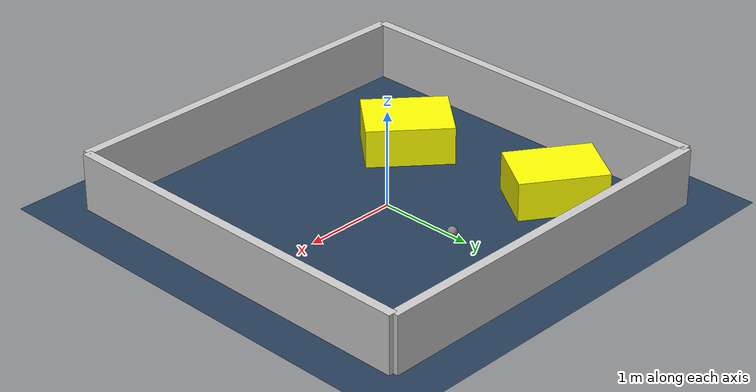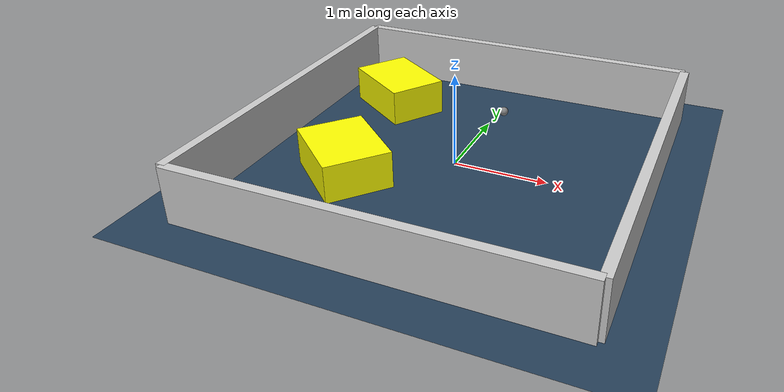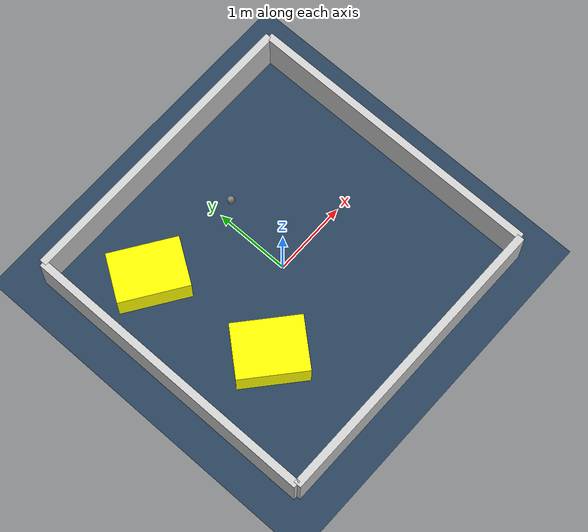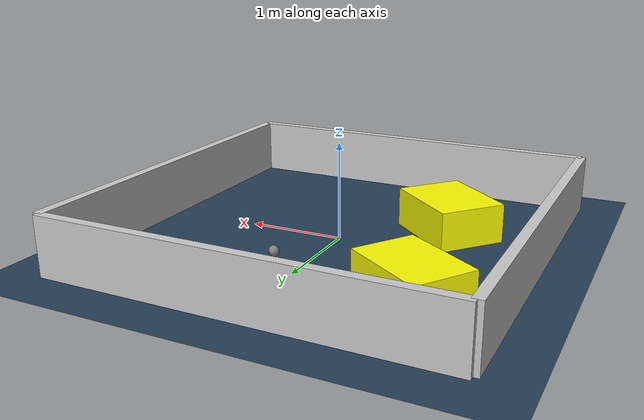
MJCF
<?xml version="1.0" ?>
<mujoco model="generated_environment">
  <option timestep="0.01" integrator="RK4" cone="elliptic"/>
  <default>
    <geom density="1"/>
  </default>
  <asset>
    <texture builtin="gradient" height="3072" rgb1="0.3 0.5 0.7" rgb2="0 0 0" type="skybox" width="512"/>
    <texture builtin="checker" height="300" mark="edge" markrgb="0.8 0.8 0.8" name="groundplane" rgb1="0.2 0.3 0.4" rgb2="0.1 0.2 0.3" type="2d" width="300"/>
    <material name="groundplane" reflectance="0.2" texrepeat="5 5" texture="groundplane" texuniform="true"/>
    <material name="robot" rgba="0.0 1.0 0.0 1"/>
  </asset>
  <worldbody>
    <light dir="0 0 -1" directional="true" pos="0 0 1.5"/>
    <geom condim="4" friction="1.0 0.005 0.001" material="groundplane" name="floor" size="0 0 0.05" type="plane"/>
    <body name="walls">
      <geom name="wall_1" condim="4" pos="-2.0 0.0 0.3" rgba="0.800000011920929 0.800000011920929 0.800000011920929 1.0" size="0.05 2.0 0.3" type="box"/>
      <geom name="wall_2" condim="4" pos="2.0 0.0 0.3" rgba="0.800000011920929 0.800000011920929 0.800000011920929 1.0" size="0.05 2.0 0.3" type="box"/>
      <geom name="wall_3" condim="4" pos="0.0 -2.0 0.3" rgba="0.800000011920929 0.800000011920929 0.800000011920929 1.0" size="2.0 0.05 0.3" type="box"/>
      <geom name="wall_4" condim="4" pos="0.0 2.0 0.3" rgba="0.800000011920929 0.800000011920929 0.800000011920929 1.0" size="2.0 0.05 0.3" type="box"/>
    </body>
    <body name="robot">
      <joint name="joint_x" type="slide" pos="0 0 0" axis="1 0 0"/>
      <joint name="joint_y" type="slide" pos="0 0 0" axis="0 1 0"/>
      <geom name="robot" type="sphere" pos="0.18000953952696763 0.9999500471304015 0.2" size="0.05" mass="5." friction="1.0 0.005 0.0001" condim="4"/>
      <site name="sensor_ball"/>
    </body>
    <body name="obstacle_1_movable">
      <geom name="obstacle_1_movable" condim="4" pos="-1.1914066627491273 1.0778728213254312 0.2" euler="0 0 146.1824839114153" friction="1.0 0.005 0.001" rgba="1 1 0 1" size="0.4541947715981723 0.3233060635743034 0.2" type="box" mass="0.1"/>
      <joint type="free"/>
    </body>
    <body name="obstacle_2_movable">
      <geom name="obstacle_2_movable" condim="4" pos="-0.9470729645029693 -0.6434366893138282 0.2" euler="0 0 229.1349985014798" friction="1.0 0.005 0.001" rgba="1 1 0 1" size="0.3509666270043103 0.44604290447026984 0.2" type="box" mass="0.1"/>
      <joint type="free"/>
    </body>
  </worldbody>
  <actuator>
    <motor name="actuator_x" joint="joint_x" gear="1" ctrlrange="-1 1"/>
    <motor name="actuator_y" joint="joint_y" gear="1" ctrlrange="-1 1"/>
  </actuator>
</mujoco>
